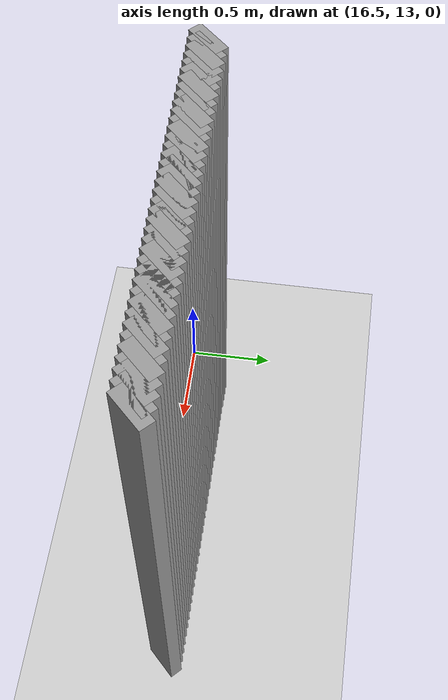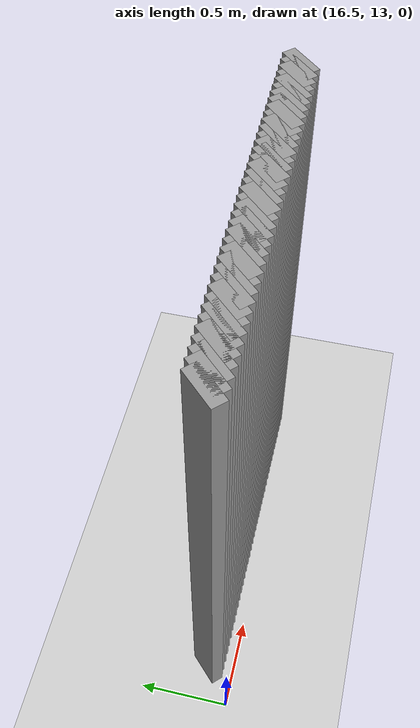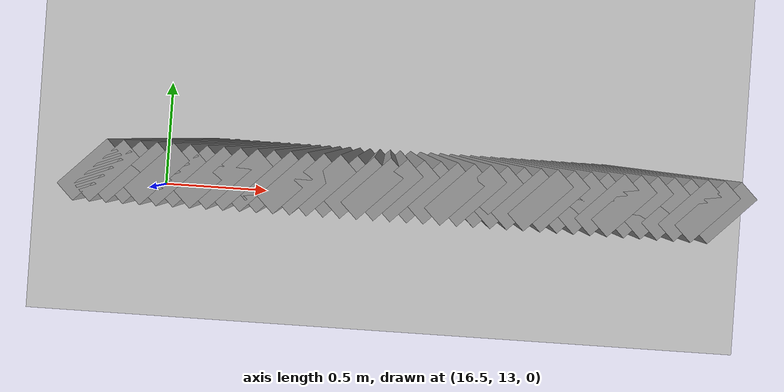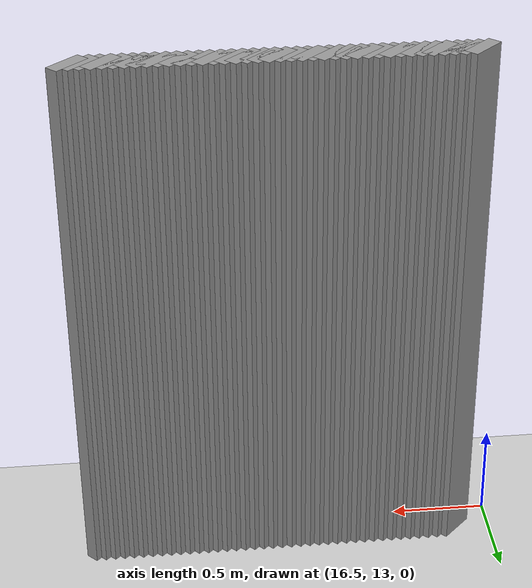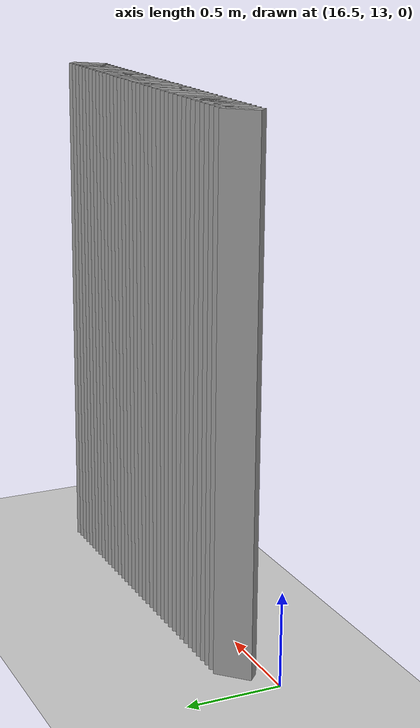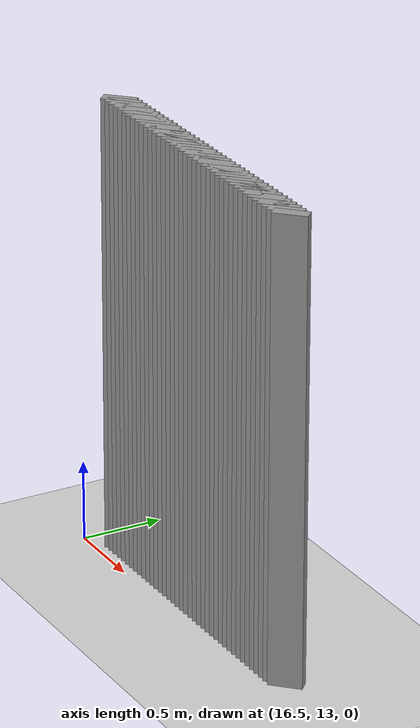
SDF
<sdf version="1.5">
 <world name="default">
  <include><uri>model://ground_plane</uri></include>
  <include><uri>model://sun</uri></include>
  <model name="grey_wall_2128">
   <static>1</static>
   <link name="link">
    <pose>16.7 13.15  1.4 0 0 -0.785398163397</pose>
    <collision name="collision"><geometry><box><size>0.0707106781187 .2  2.8</size></box></geometry></collision>
    <visual name="visual">
     <cast_shadows>0</cast_shadows>
     <geometry><box><size>0.0707106781187 .2  2.8</size></box></geometry>
     <material>
      <script>
       <uri>model://grey_wall/materials/scripts</uri>
       <uri>model://grey_wall/materials/textures</uri>
       <name>vrc/grey_wall</name>
      </script>
     </material>
    </visual>
   </link>
  </model>
  <model name="grey_wall_2129">
   <static>1</static>
   <link name="link">
    <pose>16.75 13.15  1.4 0 0 -0.785398163397</pose>
    <collision name="collision"><geometry><box><size>0.0707106781187 .2  2.8</size></box></geometry></collision>
    <visual name="visual">
     <cast_shadows>0</cast_shadows>
     <geometry><box><size>0.0707106781187 .2  2.8</size></box></geometry>
     <material>
      <script>
       <uri>model://grey_wall/materials/scripts</uri>
       <uri>model://grey_wall/materials/textures</uri>
       <name>vrc/grey_wall</name>
      </script>
     </material>
    </visual>
   </link>
  </model>
  <model name="grey_wall_2130">
   <static>1</static>
   <link name="link">
    <pose>16.8 13.15  1.4 0 0 -0.785398163397</pose>
    <collision name="collision"><geometry><box><size>0.0707106781187 .2  2.8</size></box></geometry></collision>
    <visual name="visual">
     <cast_shadows>0</cast_shadows>
     <geometry><box><size>0.0707106781187 .2  2.8</size></box></geometry>
     <material>
      <script>
       <uri>model://grey_wall/materials/scripts</uri>
       <uri>model://grey_wall/materials/textures</uri>
       <name>vrc/grey_wall</name>
      </script>
     </material>
    </visual>
   </link>
  </model>
  <model name="grey_wall_2131">
   <static>1</static>
   <link name="link">
    <pose>16.85 13.15  1.4 0 0 -0.785398163397</pose>
    <collision name="collision"><geometry><box><size>0.0707106781187 .2  2.8</size></box></geometry></collision>
    <visual name="visual">
     <cast_shadows>0</cast_shadows>
     <geometry><box><size>0.0707106781187 .2  2.8</size></box></geometry>
     <material>
      <script>
       <uri>model://grey_wall/materials/scripts</uri>
       <uri>model://grey_wall/materials/textures</uri>
       <name>vrc/grey_wall</name>
      </script>
     </material>
    </visual>
   </link>
  </model>
  <model name="grey_wall_2132">
   <static>1</static>
   <link name="link">
    <pose>16.9 13.15  1.4 0 0 -0.785398163397</pose>
    <collision name="collision"><geometry><box><size>0.0707106781187 .2  2.8</size></box></geometry></collision>
    <visual name="visual">
     <cast_shadows>0</cast_shadows>
     <geometry><box><size>0.0707106781187 .2  2.8</size></box></geometry>
     <material>
      <script>
       <uri>model://grey_wall/materials/scripts</uri>
       <uri>model://grey_wall/materials/textures</uri>
       <name>vrc/grey_wall</name>
      </script>
     </material>
    </visual>
   </link>
  </model>
  <model name="grey_wall_2133">
   <static>1</static>
   <link name="link">
    <pose>16.95 13.15  1.4 0 0 -0.785398163397</pose>
    <collision name="collision"><geometry><box><size>0.0707106781187 .2  2.8</size></box></geometry></collision>
    <visual name="visual">
     <cast_shadows>0</cast_shadows>
     <geometry><box><size>0.0707106781187 .2  2.8</size></box></geometry>
     <material>
      <script>
       <uri>model://grey_wall/materials/scripts</uri>
       <uri>model://grey_wall/materials/textures</uri>
       <name>vrc/grey_wall</name>
      </script>
     </material>
    </visual>
   </link>
  </model>
  <model name="grey_wall_2134">
   <static>1</static>
   <link name="link">
    <pose>17.0 13.15  1.4 0 0 -0.785398163397</pose>
    <collision name="collision"><geometry><box><size>0.0707106781187 .2  2.8</size></box></geometry></collision>
    <visual name="visual">
     <cast_shadows>0</cast_shadows>
     <geometry><box><size>0.0707106781187 .2  2.8</size></box></geometry>
     <material>
      <script>
       <uri>model://grey_wall/materials/scripts</uri>
       <uri>model://grey_wall/materials/textures</uri>
       <name>vrc/grey_wall</name>
      </script>
     </material>
    </visual>
   </link>
  </model>
  <model name="grey_wall_2135">
   <static>1</static>
   <link name="link">
    <pose>17.05 13.15  1.4 0 0 -0.785398163397</pose>
    <collision name="collision"><geometry><box><size>0.0707106781187 .2  2.8</size></box></geometry></collision>
    <visual name="visual">
     <cast_shadows>0</cast_shadows>
     <geometry><box><size>0.0707106781187 .2  2.8</size></box></geometry>
     <material>
      <script>
       <uri>model://grey_wall/materials/scripts</uri>
       <uri>model://grey_wall/materials/textures</uri>
       <name>vrc/grey_wall</name>
      </script>
     </material>
    </visual>
   </link>
  </model>
  <model name="grey_wall_2136">
   <static>1</static>
   <link name="link">
    <pose>17.1 13.15  1.4 0 0 -0.785398163397</pose>
    <collision name="collision"><geometry><box><size>0.0707106781187 .2  2.8</size></box></geometry></collision>
    <visual name="visual">
     <cast_shadows>0</cast_shadows>
     <geometry><box><size>0.0707106781187 .2  2.8</size></box></geometry>
     <material>
      <script>
       <uri>model://grey_wall/materials/scripts</uri>
       <uri>model://grey_wall/materials/textures</uri>
       <name>vrc/grey_wall</name>
      </script>
     </material>
    </visual>
   </link>
  </model>
  <model name="grey_wall_2137">
   <static>1</static>
   <link name="link">
    <pose>17.15 13.15  1.4 0 0 -0.785398163397</pose>
    <collision name="collision"><geometry><box><size>0.0707106781187 .2  2.8</size></box></geometry></collision>
    <visual name="visual">
     <cast_shadows>0</cast_shadows>
     <geometry><box><size>0.0707106781187 .2  2.8</size></box></geometry>
     <material>
      <script>
       <uri>model://grey_wall/materials/scripts</uri>
       <uri>model://grey_wall/materials/textures</uri>
       <name>vrc/grey_wall</name>
      </script>
     </material>
    </visual>
   </link>
  </model>
  <model name="grey_wall_2138">
   <static>1</static>
   <link name="link">
    <pose>17.2 13.15  1.4 0 0 -0.785398163397</pose>
    <collision name="collision"><geometry><box><size>0.0707106781187 .2  2.8</size></box></geometry></collision>
    <visual name="visual">
     <cast_shadows>0</cast_shadows>
     <geometry><box><size>0.0707106781187 .2  2.8</size></box></geometry>
     <material>
      <script>
       <uri>model://grey_wall/materials/scripts</uri>
       <uri>model://grey_wall/materials/textures</uri>
       <name>vrc/grey_wall</name>
      </script>
     </material>
    </visual>
   </link>
  </model>
  <model name="grey_wall_2139">
   <static>1</static>
   <link name="link">
    <pose>17.25 13.15  1.4 0 0 -0.785398163397</pose>
    <collision name="collision"><geometry><box><size>0.0707106781187 .2  2.8</size></box></geometry></collision>
    <visual name="visual">
     <cast_shadows>0</cast_shadows>
     <geometry><box><size>0.0707106781187 .2  2.8</size></box></geometry>
     <material>
      <script>
       <uri>model://grey_wall/materials/scripts</uri>
       <uri>model://grey_wall/materials/textures</uri>
       <name>vrc/grey_wall</name>
      </script>
     </material>
    </visual>
   </link>
  </model>
  <model name="grey_wall_2140">
   <static>1</static>
   <link name="link">
    <pose>17.3 13.15  1.4 0 0 -0.785398163397</pose>
    <collision name="collision"><geometry><box><size>0.0707106781187 .2  2.8</size></box></geometry></collision>
    <visual name="visual">
     <cast_shadows>0</cast_shadows>
     <geometry><box><size>0.0707106781187 .2  2.8</size></box></geometry>
     <material>
      <script>
       <uri>model://grey_wall/materials/scripts</uri>
       <uri>model://grey_wall/materials/textures</uri>
       <name>vrc/grey_wall</name>
      </script>
     </material>
    </visual>
   </link>
  </model>
  <model name="grey_wall_2141">
   <static>1</static>
   <link name="link">
    <pose>17.35 13.15  1.4 0 0 -0.785398163397</pose>
    <collision name="collision"><geometry><box><size>0.0707106781187 .2  2.8</size></box></geometry></collision>
    <visual name="visual">
     <cast_shadows>0</cast_shadows>
     <geometry><box><size>0.0707106781187 .2  2.8</size></box></geometry>
     <material>
      <script>
       <uri>model://grey_wall/materials/scripts</uri>
       <uri>model://grey_wall/materials/textures</uri>
       <name>vrc/grey_wall</name>
      </script>
     </material>
    </visual>
   </link>
  </model>
  <model name="grey_wall_2142">
   <static>1</static>
   <link name="link">
    <pose>17.4 13.15  1.4 0 0 -0.785398163397</pose>
    <collision name="collision"><geometry><box><size>0.0707106781187 .2  2.8</size></box></geometry></collision>
    <visual name="visual">
     <cast_shadows>0</cast_shadows>
     <geometry><box><size>0.0707106781187 .2  2.8</size></box></geometry>
     <material>
      <script>
       <uri>model://grey_wall/materials/scripts</uri>
       <uri>model://grey_wall/materials/textures</uri>
       <name>vrc/grey_wall</name>
      </script>
     </material>
    </visual>
   </link>
  </model>
  <model name="grey_wall_2143">
   <static>1</static>
   <link name="link">
    <pose>17.45 13.15  1.4 0 0 -0.785398163397</pose>
    <collision name="collision"><geometry><box><size>0.0707106781187 .2  2.8</size></box></geometry></collision>
    <visual name="visual">
     <cast_shadows>0</cast_shadows>
     <geometry><box><size>0.0707106781187 .2  2.8</size></box></geometry>
     <material>
      <script>
       <uri>model://grey_wall/materials/scripts</uri>
       <uri>model://grey_wall/materials/textures</uri>
       <name>vrc/grey_wall</name>
      </script>
     </material>
    </visual>
   </link>
  </model>
  <model name="grey_wall_2144">
   <static>1</static>
   <link name="link">
    <pose>17.5 13.15  1.4 0 0 -0.785398163397</pose>
    <collision name="collision"><geometry><box><size>0.0707106781187 .2  2.8</size></box></geometry></collision>
    <visual name="visual">
     <cast_shadows>0</cast_shadows>
     <geometry><box><size>0.0707106781187 .2  2.8</size></box></geometry>
     <material>
      <script>
       <uri>model://grey_wall/materials/scripts</uri>
       <uri>model://grey_wall/materials/textures</uri>
       <name>vrc/grey_wall</name>
      </script>
     </material>
    </visual>
   </link>
  </model>
  <model name="grey_wall_2145">
   <static>1</static>
   <link name="link">
    <pose>17.55 13.15  1.4 0 0 -0.785398163397</pose>
    <collision name="collision"><geometry><box><size>0.0707106781187 .2  2.8</size></box></geometry></collision>
    <visual name="visual">
     <cast_shadows>0</cast_shadows>
     <geometry><box><size>0.0707106781187 .2  2.8</size></box></geometry>
     <material>
      <script>
       <uri>model://grey_wall/materials/scripts</uri>
       <uri>model://grey_wall/materials/textures</uri>
       <name>vrc/grey_wall</name>
      </script>
     </material>
    </visual>
   </link>
  </model>
  <model name="grey_wall_2146">
   <static>1</static>
   <link name="link">
    <pose>17.6 13.15  1.4 0 0 -0.785398163397</pose>
    <collision name="collision"><geometry><box><size>0.0707106781187 .2  2.8</size></box></geometry></collision>
    <visual name="visual">
     <cast_shadows>0</cast_shadows>
     <geometry><box><size>0.0707106781187 .2  2.8</size></box></geometry>
     <material>
      <script>
       <uri>model://grey_wall/materials/scripts</uri>
       <uri>model://grey_wall/materials/textures</uri>
       <name>vrc/grey_wall</name>
      </script>
     </material>
    </visual>
   </link>
  </model>
  <model name="grey_wall_2147">
   <static>1</static>
   <link name="link">
    <pose>17.65 13.15  1.4 0 0 -0.785398163397</pose>
    <collision name="collision"><geometry><box><size>0.0707106781187 .2  2.8</size></box></geometry></collision>
    <visual name="visual">
     <cast_shadows>0</cast_shadows>
     <geometry><box><size>0.0707106781187 .2  2.8</size></box></geometry>
     <material>
      <script>
       <uri>model://grey_wall/materials/scripts</uri>
       <uri>model://grey_wall/materials/textures</uri>
       <name>vrc/grey_wall</name>
      </script>
     </material>
    </visual>
   </link>
  </model>
  <model name="grey_wall_2148">
   <static>1</static>
   <link name="link">
    <pose>17.7 13.15  1.4 0 0 -0.785398163397</pose>
    <collision name="collision"><geometry><box><size>0.0707106781187 .2  2.8</size></box></geometry></collision>
    <visual name="visual">
     <cast_shadows>0</cast_shadows>
     <geometry><box><size>0.0707106781187 .2  2.8</size></box></geometry>
     <material>
      <script>
       <uri>model://grey_wall/materials/scripts</uri>
       <uri>model://grey_wall/materials/textures</uri>
       <name>vrc/grey_wall</name>
      </script>
     </material>
    </visual>
   </link>
  </model>
  <model name="grey_wall_2149">
   <static>1</static>
   <link name="link">
    <pose>17.75 13.15  1.4 0 0 -0.785398163397</pose>
    <collision name="collision"><geometry><box><size>0.0707106781187 .2  2.8</size></box></geometry></collision>
    <visual name="visual">
     <cast_shadows>0</cast_shadows>
     <geometry><box><size>0.0707106781187 .2  2.8</size></box></geometry>
     <material>
      <script>
       <uri>model://grey_wall/materials/scripts</uri>
       <uri>model://grey_wall/materials/textures</uri>
       <name>vrc/grey_wall</name>
      </script>
     </material>
    </visual>
   </link>
  </model>
  <model name="grey_wall_2150">
   <static>1</static>
   <link name="link">
    <pose>17.8 13.15  1.4 0 0 -0.785398163397</pose>
    <collision name="collision"><geometry><box><size>0.0707106781187 .2  2.8</size></box></geometry></collision>
    <visual name="visual">
     <cast_shadows>0</cast_shadows>
     <geometry><box><size>0.0707106781187 .2  2.8</size></box></geometry>
     <material>
      <script>
       <uri>model://grey_wall/materials/scripts</uri>
       <uri>model://grey_wall/materials/textures</uri>
       <name>vrc/grey_wall</name>
      </script>
     </material>
    </visual>
   </link>
  </model>
  <model name="grey_wall_2151">
   <static>1</static>
   <link name="link">
    <pose>17.85 13.15  1.4 0 0 -0.785398163397</pose>
    <collision name="collision"><geometry><box><size>0.0707106781187 .2  2.8</size></box></geometry></collision>
    <visual name="visual">
     <cast_shadows>0</cast_shadows>
     <geometry><box><size>0.0707106781187 .2  2.8</size></box></geometry>
     <material>
      <script>
       <uri>model://grey_wall/materials/scripts</uri>
       <uri>model://grey_wall/materials/textures</uri>
       <name>vrc/grey_wall</name>
      </script>
     </material>
    </visual>
   </link>
  </model>
  <model name="grey_wall_2152">
   <static>1</static>
   <link name="link">
    <pose>17.9 13.15  1.4 0 0 -0.785398163397</pose>
    <collision name="collision"><geometry><box><size>0.0707106781187 .2  2.8</size></box></geometry></collision>
    <visual name="visual">
     <cast_shadows>0</cast_shadows>
     <geometry><box><size>0.0707106781187 .2  2.8</size></box></geometry>
     <material>
      <script>
       <uri>model://grey_wall/materials/scripts</uri>
       <uri>model://grey_wall/materials/textures</uri>
       <name>vrc/grey_wall</name>
      </script>
     </material>
    </visual>
   </link>
  </model>
  <model name="grey_wall_2153">
   <static>1</static>
   <link name="link">
    <pose>17.95 13.15  1.4 0 0 -0.785398163397</pose>
    <collision name="collision"><geometry><box><size>0.0707106781187 .2  2.8</size></box></geometry></collision>
    <visual name="visual">
     <cast_shadows>0</cast_shadows>
     <geometry><box><size>0.0707106781187 .2  2.8</size></box></geometry>
     <material>
      <script>
       <uri>model://grey_wall/materials/scripts</uri>
       <uri>model://grey_wall/materials/textures</uri>
       <name>vrc/grey_wall</name>
      </script>
     </material>
    </visual>
   </link>
  </model>
  <model name="grey_wall_2154">
   <static>1</static>
   <link name="link">
    <pose>18.0 13.15  1.4 0 0 -0.785398163397</pose>
    <collision name="collision"><geometry><box><size>0.0707106781187 .2  2.8</size></box></geometry></collision>
    <visual name="visual">
     <cast_shadows>0</cast_shadows>
     <geometry><box><size>0.0707106781187 .2  2.8</size></box></geometry>
     <material>
      <script>
       <uri>model://grey_wall/materials/scripts</uri>
       <uri>model://grey_wall/materials/textures</uri>
       <name>vrc/grey_wall</name>
      </script>
     </material>
    </visual>
   </link>
  </model>
  <model name="grey_wall_2155">
   <static>1</static>
   <link name="link">
    <pose>18.05 13.15  1.4 0 0 -0.785398163397</pose>
    <collision name="collision"><geometry><box><size>0.0707106781187 .2  2.8</size></box></geometry></collision>
    <visual name="visual">
     <cast_shadows>0</cast_shadows>
     <geometry><box><size>0.0707106781187 .2  2.8</size></box></geometry>
     <material>
      <script>
       <uri>model://grey_wall/materials/scripts</uri>
       <uri>model://grey_wall/materials/textures</uri>
       <name>vrc/grey_wall</name>
      </script>
     </material>
    </visual>
   </link>
  </model>
  <model name="grey_wall_2156">
   <static>1</static>
   <link name="link">
    <pose>18.1 13.15  1.4 0 0 -0.785398163397</pose>
    <collision name="collision"><geometry><box><size>0.0707106781187 .2  2.8</size></box></geometry></collision>
    <visual name="visual">
     <cast_shadows>0</cast_shadows>
     <geometry><box><size>0.0707106781187 .2  2.8</size></box></geometry>
     <material>
      <script>
       <uri>model://grey_wall/materials/scripts</uri>
       <uri>model://grey_wall/materials/textures</uri>
       <name>vrc/grey_wall</name>
      </script>
     </material>
    </visual>
   </link>
  </model>
  <model name="grey_wall_2157">
   <static>1</static>
   <link name="link">
    <pose>18.15 13.15  1.4 0 0 -0.785398163397</pose>
    <collision name="collision"><geometry><box><size>0.0707106781187 .2  2.8</size></box></geometry></collision>
    <visual name="visual">
     <cast_shadows>0</cast_shadows>
     <geometry><box><size>0.0707106781187 .2  2.8</size></box></geometry>
     <material>
      <script>
       <uri>model://grey_wall/materials/scripts</uri>
       <uri>model://grey_wall/materials/textures</uri>
       <name>vrc/grey_wall</name>
      </script>
     </material>
    </visual>
   </link>
  </model>
  <model name="grey_wall_2158">
   <static>1</static>
   <link name="link">
    <pose>18.2 13.15  1.4 0 0 -0.785398163397</pose>
    <collision name="collision"><geometry><box><size>0.0707106781187 .2  2.8</size></box></geometry></collision>
    <visual name="visual">
     <cast_shadows>0</cast_shadows>
     <geometry><box><size>0.0707106781187 .2  2.8</size></box></geometry>
     <material>
      <script>
       <uri>model://grey_wall/materials/scripts</uri>
       <uri>model://grey_wall/materials/textures</uri>
       <name>vrc/grey_wall</name>
      </script>
     </material>
    </visual>
   </link>
  </model>
  <model name="grey_wall_2159">
   <static>1</static>
   <link name="link">
    <pose>18.25 13.15  1.4 0 0 -0.785398163397</pose>
    <collision name="collision"><geometry><box><size>0.0707106781187 .2  2.8</size></box></geometry></collision>
    <visual name="visual">
     <cast_shadows>0</cast_shadows>
     <geometry><box><size>0.0707106781187 .2  2.8</size></box></geometry>
     <material>
      <script>
       <uri>model://grey_wall/materials/scripts</uri>
       <uri>model://grey_wall/materials/textures</uri>
       <name>vrc/grey_wall</name>
      </script>
     </material>
    </visual>
   </link>
  </model>
  <model name="grey_wall_2160">
   <static>1</static>
   <link name="link">
    <pose>18.3 13.15  1.4 0 0 -0.785398163397</pose>
    <collision name="collision"><geometry><box><size>0.0707106781187 .2  2.8</size></box></geometry></collision>
    <visual name="visual">
     <cast_shadows>0</cast_shadows>
     <geometry><box><size>0.0707106781187 .2  2.8</size></box></geometry>
     <material>
      <script>
       <uri>model://grey_wall/materials/scripts</uri>
       <uri>model://grey_wall/materials/textures</uri>
       <name>vrc/grey_wall</name>
      </script>
     </material>
    </visual>
   </link>
  </model>
  <model name="grey_wall_2161">
   <static>1</static>
   <link name="link">
    <pose>18.35 13.15  1.4 0 0 -0.785398163397</pose>
    <collision name="collision"><geometry><box><size>0.0707106781187 .2  2.8</size></box></geometry></collision>
    <visual name="visual">
     <cast_shadows>0</cast_shadows>
     <geometry><box><size>0.0707106781187 .2  2.8</size></box></geometry>
     <material>
      <script>
       <uri>model://grey_wall/materials/scripts</uri>
       <uri>model://grey_wall/materials/textures</uri>
       <name>vrc/grey_wall</name>
      </script>
     </material>
    </visual>
   </link>
  </model>
  <model name="grey_wall_2162">
   <static>1</static>
   <link name="link">
    <pose>18.4 13.15  1.4 0 0 -0.785398163397</pose>
    <collision name="collision"><geometry><box><size>0.0707106781187 .2  2.8</size></box></geometry></collision>
    <visual name="visual">
     <cast_shadows>0</cast_shadows>
     <geometry><box><size>0.0707106781187 .2  2.8</size></box></geometry>
     <material>
      <script>
       <uri>model://grey_wall/materials/scripts</uri>
       <uri>model://grey_wall/materials/textures</uri>
       <name>vrc/grey_wall</name>
      </script>
     </material>
    </visual>
   </link>
  </model>
  <model name="grey_wall_2163">
   <static>1</static>
   <link name="link">
    <pose>18.45 13.15  1.4 0 0 -0.785398163397</pose>
    <collision name="collision"><geometry><box><size>0.0707106781187 .2  2.8</size></box></geometry></collision>
    <visual name="visual">
     <cast_shadows>0</cast_shadows>
     <geometry><box><size>0.0707106781187 .2  2.8</size></box></geometry>
     <material>
      <script>
       <uri>model://grey_wall/materials/scripts</uri>
       <uri>model://grey_wall/materials/textures</uri>
       <name>vrc/grey_wall</name>
      </script>
     </material>
    </visual>
   </link>
  </model>
  <model name="grey_wall_2164">
   <static>1</static>
   <link name="link">
    <pose>18.5 13.15  1.4 0 0 -0.785398163397</pose>
    <collision name="collision"><geometry><box><size>0.0707106781187 .2  2.8</size></box></geometry></collision>
    <visual name="visual">
     <cast_shadows>0</cast_shadows>
     <geometry><box><size>0.0707106781187 .2  2.8</size></box></geometry>
     <material>
      <script>
       <uri>model://grey_wall/materials/scripts</uri>
       <uri>model://grey_wall/materials/textures</uri>
       <name>vrc/grey_wall</name>
      </script>
     </material>
    </visual>
   </link>
  </model>
  <model name="grey_wall_2165">
   <static>1</static>
   <link name="link">
    <pose>18.55 13.15  1.4 0 0 -0.785398163397</pose>
    <collision name="collision"><geometry><box><size>0.0707106781187 .2  2.8</size></box></geometry></collision>
    <visual name="visual">
     <cast_shadows>0</cast_shadows>
     <geometry><box><size>0.0707106781187 .2  2.8</size></box></geometry>
     <material>
      <script>
       <uri>model://grey_wall/materials/scripts</uri>
       <uri>model://grey_wall/materials/textures</uri>
       <name>vrc/grey_wall</name>
      </script>
     </material>
    </visual>
   </link>
  </model>
  <model name="grey_wall_2166">
   <static>1</static>
   <link name="link">
    <pose>18.6 13.15  1.4 0 0 -0.785398163397</pose>
    <collision name="collision"><geometry><box><size>0.0707106781187 .2  2.8</size></box></geometry></collision>
    <visual name="visual">
     <cast_shadows>0</cast_shadows>
     <geometry><box><size>0.0707106781187 .2  2.8</size></box></geometry>
     <material>
      <script>
       <uri>model://grey_wall/materials/scripts</uri>
       <uri>model://grey_wall/materials/textures</uri>
       <name>vrc/grey_wall</name>
      </script>
     </material>
    </visual>
   </link>
  </model>
 </world>
</sdf>
